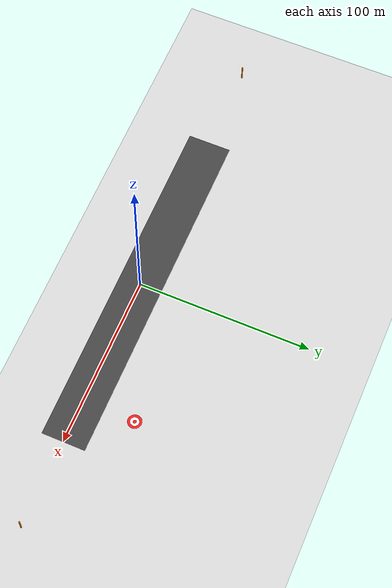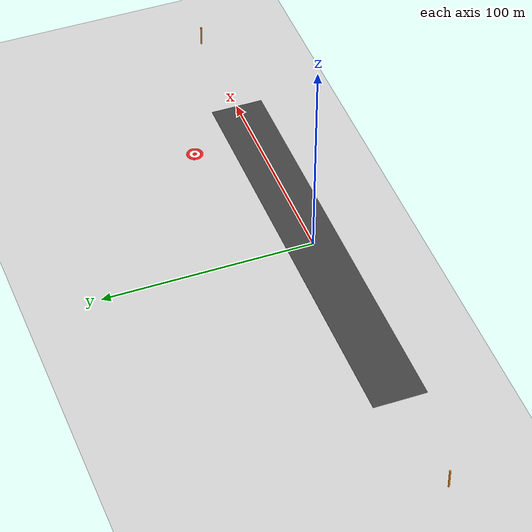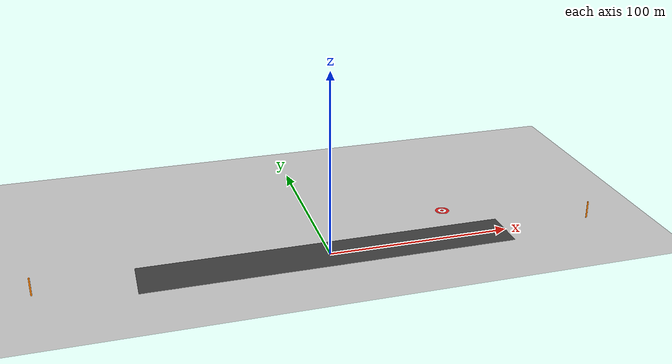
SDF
<?xml version="1.0" ?>
<sdf version="1.6">
  <world name="dbf_airfield">
    <include>
      <uri>model://sun</uri>
    </include>

    <include>
      <uri>model://ground_plane</uri>
    </include>

    <!-- Airfield Runway Surface -->
    <model name="airfield_runway">
      <static>true</static>
      <pose>0 0 0.005 0 0 0</pose>
      <link name="runway_link">
        <collision name="runway_col">
          <geometry>
            <box>
              <size>200.0 25.0 0.01</size>
            </box>
          </geometry>
        </collision>
        <visual name="runway_vis">
          <geometry>
            <box>
              <size>200.0 25.0 0.01</size>
            </box>
          </geometry>
          <material>
            <ambient>0.2 0.2 0.2 1.0</ambient>
            <diffuse>0.25 0.25 0.25 1.0</diffuse>
          </material>
        </visual>
      </link>
    </model>

    <!-- Mission 3 Ground Target (Concentric Target Bullseye) -->
    <model name="mission3_target">
      <static>true</static>
      <pose>75.0 30.0 0.01 0 0 0</pose>
      <link name="target_link">
        <visual name="outer_ring">
          <geometry>
            <cylinder>
              <radius>4.0</radius>
              <length>0.02</length>
            </cylinder>
          </geometry>
          <material>
            <ambient>0.9 0.1 0.1 1.0</ambient>
          </material>
        </visual>
        <visual name="middle_ring">
          <pose>0 0 0.005 0 0 0</pose>
          <geometry>
            <cylinder>
              <radius>2.5</radius>
              <length>0.02</length>
            </cylinder>
          </geometry>
          <material>
            <ambient>1.0 1.0 1.0 1.0</ambient>
          </material>
        </visual>
        <visual name="bullseye">
          <pose>0 0 0.01 0 0 0</pose>
          <geometry>
            <cylinder>
              <radius>1.0</radius>
              <length>0.02</length>
            </cylinder>
          </geometry>
          <material>
            <ambient>0.9 0.1 0.1 1.0</ambient>
          </material>
        </visual>
      </link>
    </model>

    <!-- Mission Circuit Pylons -->
    <model name="north_pylon">
      <static>true</static>
      <pose>150.0 0 5.0 0 0 0</pose>
      <link name="pylon_link">
        <visual name="vis">
          <geometry>
            <cylinder>
              <radius>0.4</radius>
              <length>10.0</length>
            </cylinder>
          </geometry>
          <material>
            <ambient>1.0 0.5 0.0 1.0</ambient>
          </material>
        </visual>
      </link>
    </model>

    <model name="south_pylon">
      <static>true</static>
      <pose>-150.0 0 5.0 0 0 0</pose>
      <link name="pylon_link">
        <visual name="vis">
          <geometry>
            <cylinder>
              <radius>0.4</radius>
              <length>10.0</length>
            </cylinder>
          </geometry>
          <material>
            <ambient>1.0 0.5 0.0 1.0</ambient>
          </material>
        </visual>
      </link>
    </model>

    <physics type="ode">
      <max_step_size>0.004</max_step_size>
      <real_time_factor>1.0</real_time_factor>
      <real_time_update_rate>250</real_time_update_rate>
    </physics>
  </world>
</sdf>
